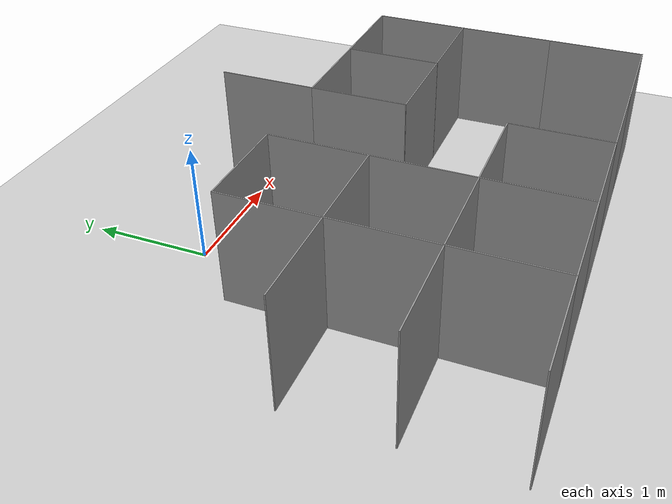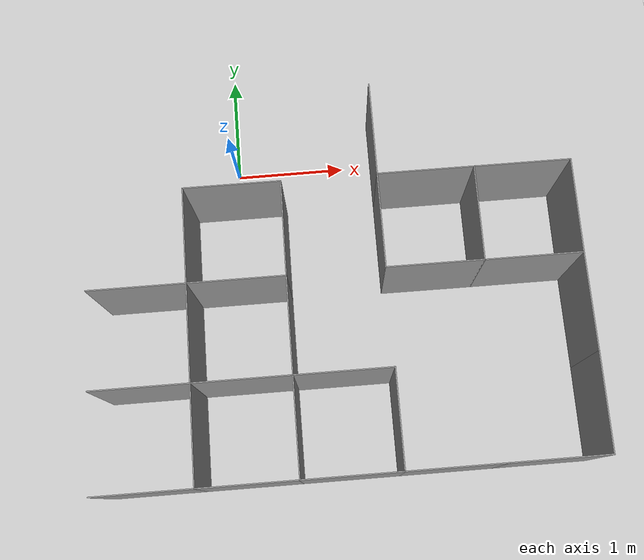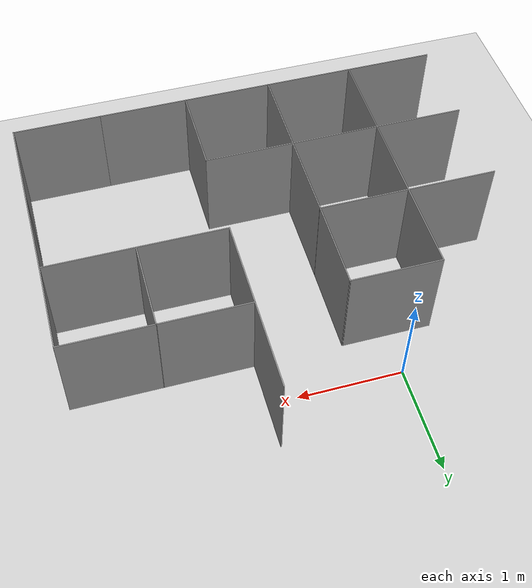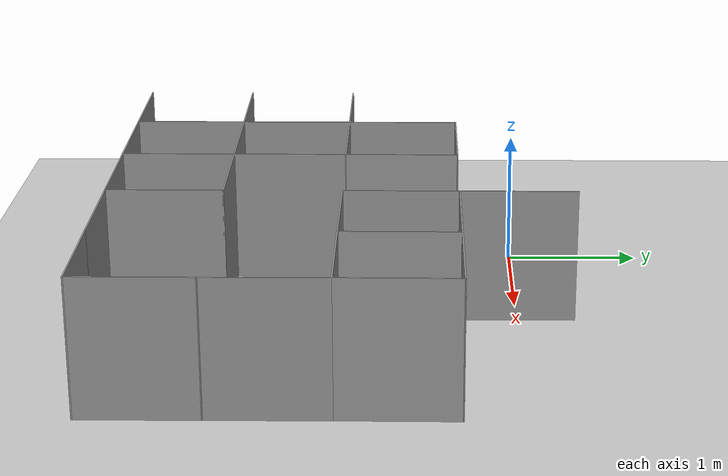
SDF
<sdf version="1.7">
 <world name="default">
  <include><uri>model://sun</uri></include>
  <include><uri>model://ground_plane</uri></include>
  <model name="Lab1">
   <link name="Wall_159">
    <pose>-0.846372 -2.97504 0 0 -0 0</pose>
    <visual name="Wall_159_Visual">
     <pose>0 0 0.5 0 -0 0</pose>
     <geometry><box><size>0.860147 0.01 1</size></box></geometry>
     <material>
      <script><uri>file://media/materials/scripts/gazebo.material</uri><name>Gazebo/Grey</name></script>
      <ambient>1 1 1 1</ambient>
      <shader type="pixel"/>
     </material>
     <meta><layer>0</layer></meta>
    </visual>
    <collision name="Wall_159_Collision">
     <pose>0 0 0.5 0 -0 0</pose>
     <geometry><box><size>0.860147 0.01 1</size></box></geometry>
     <surface>
      <friction>
       <ode><mu>1</mu><mu2>1</mu2><fdir1>0 0 0</fdir1><slip1>0</slip1><slip2>0</slip2></ode>
       <torsional>
        <coefficient>1</coefficient>
        <patch_radius>0</patch_radius>
        <surface_radius>0</surface_radius>
        <use_patch_radius>1</use_patch_radius>
        <ode><slip>0</slip></ode>
       </torsional>
      </friction>
      <bounce><restitution_coefficient>0</restitution_coefficient><threshold>1e+06</threshold></bounce>
      <contact>
       <collide_without_contact>0</collide_without_contact>
       <collide_without_contact_bitmask>1</collide_without_contact_bitmask>
       <collide_bitmask>1</collide_bitmask>
       <ode>
        <soft_cfm>0</soft_cfm>
        <soft_erp>0.2</soft_erp>
        <kp>1e+13</kp>
        <kd>1</kd>
        <max_vel>0.01</max_vel>
        <min_depth>0</min_depth>
       </ode>
       <bullet>
        <split_impulse>1</split_impulse>
        <split_impulse_penetration_threshold>-0.01</split_impulse_penetration_threshold>
        <soft_cfm>0</soft_cfm>
        <soft_erp>0.2</soft_erp>
        <kp>1e+13</kp>
        <kd>1</kd>
       </bullet>
      </contact>
     </surface>
    </collision>
   </link>
   <link name="Wall_160">
    <pose>0.003628 -2.97504 0 0 -0 0</pose>
    <visual name="Wall_160_Visual">
     <pose>0 0 0.5 0 -0 0</pose>
     <geometry><box><size>0.860147 0.01 1</size></box></geometry>
     <material>
      <script><uri>file://media/materials/scripts/gazebo.material</uri><name>Gazebo/Grey</name></script>
      <ambient>1 1 1 1</ambient>
      <shader type="pixel"/>
     </material>
     <meta><layer>0</layer></meta>
    </visual>
    <collision name="Wall_160_Collision">
     <pose>0 0 0.5 0 -0 0</pose>
     <geometry><box><size>0.860147 0.01 1</size></box></geometry>
     <surface>
      <friction>
       <ode><mu>1</mu><mu2>1</mu2><fdir1>0 0 0</fdir1><slip1>0</slip1><slip2>0</slip2></ode>
       <torsional>
        <coefficient>1</coefficient>
        <patch_radius>0</patch_radius>
        <surface_radius>0</surface_radius>
        <use_patch_radius>1</use_patch_radius>
        <ode><slip>0</slip></ode>
       </torsional>
      </friction>
      <bounce><restitution_coefficient>0</restitution_coefficient><threshold>1e+06</threshold></bounce>
      <contact>
       <collide_without_contact>0</collide_without_contact>
       <collide_without_contact_bitmask>1</collide_without_contact_bitmask>
       <collide_bitmask>1</collide_bitmask>
       <ode>
        <soft_cfm>0</soft_cfm>
        <soft_erp>0.2</soft_erp>
        <kp>1e+13</kp>
        <kd>1</kd>
        <max_vel>0.01</max_vel>
        <min_depth>0</min_depth>
       </ode>
       <bullet>
        <split_impulse>1</split_impulse>
        <split_impulse_penetration_threshold>-0.01</split_impulse_penetration_threshold>
        <soft_cfm>0</soft_cfm>
        <soft_erp>0.2</soft_erp>
        <kp>1e+13</kp>
        <kd>1</kd>
       </bullet>
      </contact>
     </surface>
    </collision>
   </link>
   <link name="Wall_161">
    <pose>0.853628 -2.97504 0 0 -0 0</pose>
    <visual name="Wall_161_Visual">
     <pose>0 0 0.5 0 -0 0</pose>
     <geometry><box><size>0.860147 0.01 1</size></box></geometry>
     <material>
      <script><uri>file://media/materials/scripts/gazebo.material</uri><name>Gazebo/Grey</name></script>
      <ambient>1 1 1 1</ambient>
      <shader type="pixel"/>
     </material>
     <meta><layer>0</layer></meta>
    </visual>
    <collision name="Wall_161_Collision">
     <pose>0 0 0.5 0 -0 0</pose>
     <geometry><box><size>0.860147 0.01 1</size></box></geometry>
     <surface>
      <friction>
       <ode><mu>1</mu><mu2>1</mu2><fdir1>0 0 0</fdir1><slip1>0</slip1><slip2>0</slip2></ode>
       <torsional>
        <coefficient>1</coefficient>
        <patch_radius>0</patch_radius>
        <surface_radius>0</surface_radius>
        <use_patch_radius>1</use_patch_radius>
        <ode><slip>0</slip></ode>
       </torsional>
      </friction>
      <bounce><restitution_coefficient>0</restitution_coefficient><threshold>1e+06</threshold></bounce>
      <contact>
       <collide_without_contact>0</collide_without_contact>
       <collide_without_contact_bitmask>1</collide_without_contact_bitmask>
       <collide_bitmask>1</collide_bitmask>
       <ode>
        <soft_cfm>0</soft_cfm>
        <soft_erp>0.2</soft_erp>
        <kp>1e+13</kp>
        <kd>1</kd>
        <max_vel>0.01</max_vel>
        <min_depth>0</min_depth>
       </ode>
       <bullet>
        <split_impulse>1</split_impulse>
        <split_impulse_penetration_threshold>-0.01</split_impulse_penetration_threshold>
        <soft_cfm>0</soft_cfm>
        <soft_erp>0.2</soft_erp>
        <kp>1e+13</kp>
        <kd>1</kd>
       </bullet>
      </contact>
     </surface>
    </collision>
   </link>
   <link name="Wall_162">
    <pose>1.70363 -2.97504 0 0 -0 0</pose>
    <visual name="Wall_162_Visual">
     <pose>0 0 0.5 0 -0 0</pose>
     <geometry><box><size>0.860147 0.01 1</size></box></geometry>
     <material>
      <script><uri>file://media/materials/scripts/gazebo.material</uri><name>Gazebo/Grey</name></script>
      <ambient>1 1 1 1</ambient>
      <shader type="pixel"/>
     </material>
     <meta><layer>0</layer></meta>
    </visual>
    <collision name="Wall_162_Collision">
     <pose>0 0 0.5 0 -0 0</pose>
     <geometry><box><size>0.860147 0.01 1</size></box></geometry>
     <surface>
      <friction>
       <ode><mu>1</mu><mu2>1</mu2><fdir1>0 0 0</fdir1><slip1>0</slip1><slip2>0</slip2></ode>
       <torsional>
        <coefficient>1</coefficient>
        <patch_radius>0</patch_radius>
        <surface_radius>0</surface_radius>
        <use_patch_radius>1</use_patch_radius>
        <ode><slip>0</slip></ode>
       </torsional>
      </friction>
      <bounce><restitution_coefficient>0</restitution_coefficient><threshold>1e+06</threshold></bounce>
      <contact>
       <collide_without_contact>0</collide_without_contact>
       <collide_without_contact_bitmask>1</collide_without_contact_bitmask>
       <collide_bitmask>1</collide_bitmask>
       <ode>
        <soft_cfm>0</soft_cfm>
        <soft_erp>0.2</soft_erp>
        <kp>1e+13</kp>
        <kd>1</kd>
        <max_vel>0.01</max_vel>
        <min_depth>0</min_depth>
       </ode>
       <bullet>
        <split_impulse>1</split_impulse>
        <split_impulse_penetration_threshold>-0.01</split_impulse_penetration_threshold>
        <soft_cfm>0</soft_cfm>
        <soft_erp>0.2</soft_erp>
        <kp>1e+13</kp>
        <kd>1</kd>
       </bullet>
      </contact>
     </surface>
    </collision>
   </link>
   <link name="Wall_163">
    <pose>2.55363 -2.97504 0 0 -0 0</pose>
    <visual name="Wall_163_Visual">
     <pose>0 0 0.5 0 -0 0</pose>
     <geometry><box><size>0.860147 0.01 1</size></box></geometry>
     <material>
      <script><uri>file://media/materials/scripts/gazebo.material</uri><name>Gazebo/Grey</name></script>
      <ambient>1 1 1 1</ambient>
      <shader type="pixel"/>
     </material>
     <meta><layer>0</layer></meta>
    </visual>
    <collision name="Wall_163_Collision">
     <pose>0 0 0.5 0 -0 0</pose>
     <geometry><box><size>0.860147 0.01 1</size></box></geometry>
     <surface>
      <friction>
       <ode><mu>1</mu><mu2>1</mu2><fdir1>0 0 0</fdir1><slip1>0</slip1><slip2>0</slip2></ode>
       <torsional>
        <coefficient>1</coefficient>
        <patch_radius>0</patch_radius>
        <surface_radius>0</surface_radius>
        <use_patch_radius>1</use_patch_radius>
        <ode><slip>0</slip></ode>
       </torsional>
      </friction>
      <bounce><restitution_coefficient>0</restitution_coefficient><threshold>1e+06</threshold></bounce>
      <contact>
       <collide_without_contact>0</collide_without_contact>
       <collide_without_contact_bitmask>1</collide_without_contact_bitmask>
       <collide_bitmask>1</collide_bitmask>
       <ode>
        <soft_cfm>0</soft_cfm>
        <soft_erp>0.2</soft_erp>
        <kp>1e+13</kp>
        <kd>1</kd>
        <max_vel>0.01</max_vel>
        <min_depth>0</min_depth>
       </ode>
       <bullet>
        <split_impulse>1</split_impulse>
        <split_impulse_penetration_threshold>-0.01</split_impulse_penetration_threshold>
        <soft_cfm>0</soft_cfm>
        <soft_erp>0.2</soft_erp>
        <kp>1e+13</kp>
        <kd>1</kd>
       </bullet>
      </contact>
     </surface>
    </collision>
   </link>
   <link name="Wall_164">
    <pose>2.97863 -2.55003 0 0 -0 1.5708</pose>
    <visual name="Wall_164_Visual">
     <pose>0 0 0.5 0 -0 0</pose>
     <geometry><box><size>0.859555 0.01 1</size></box></geometry>
     <material>
      <script><uri>file://media/materials/scripts/gazebo.material</uri><name>Gazebo/Grey</name></script>
      <ambient>1 1 1 1</ambient>
      <shader type="pixel"/>
     </material>
     <meta><layer>0</layer></meta>
    </visual>
    <collision name="Wall_164_Collision">
     <pose>0 0 0.5 0 -0 0</pose>
     <geometry><box><size>0.859555 0.01 1</size></box></geometry>
     <surface>
      <friction>
       <ode><mu>1</mu><mu2>1</mu2><fdir1>0 0 0</fdir1><slip1>0</slip1><slip2>0</slip2></ode>
       <torsional>
        <coefficient>1</coefficient>
        <patch_radius>0</patch_radius>
        <surface_radius>0</surface_radius>
        <use_patch_radius>1</use_patch_radius>
        <ode><slip>0</slip></ode>
       </torsional>
      </friction>
      <bounce><restitution_coefficient>0</restitution_coefficient><threshold>1e+06</threshold></bounce>
      <contact>
       <collide_without_contact>0</collide_without_contact>
       <collide_without_contact_bitmask>1</collide_without_contact_bitmask>
       <collide_bitmask>1</collide_bitmask>
       <ode>
        <soft_cfm>0</soft_cfm>
        <soft_erp>0.2</soft_erp>
        <kp>1e+13</kp>
        <kd>1</kd>
        <max_vel>0.01</max_vel>
        <min_depth>0</min_depth>
       </ode>
       <bullet>
        <split_impulse>1</split_impulse>
        <split_impulse_penetration_threshold>-0.01</split_impulse_penetration_threshold>
        <soft_cfm>0</soft_cfm>
        <soft_erp>0.2</soft_erp>
        <kp>1e+13</kp>
        <kd>1</kd>
       </bullet>
      </contact>
     </surface>
    </collision>
   </link>
   <link name="Wall_165">
    <pose>2.97663 -1.69803 0 0 -0 1.57548</pose>
    <visual name="Wall_165_Visual">
     <pose>0 0 0.5 0 -0 0</pose>
     <geometry><box><size>0.864282 0.01 1</size></box></geometry>
     <material>
      <script><uri>file://media/materials/scripts/gazebo.material</uri><name>Gazebo/Grey</name></script>
      <ambient>1 1 1 1</ambient>
      <shader type="pixel"/>
     </material>
     <meta><layer>0</layer></meta>
    </visual>
    <collision name="Wall_165_Collision">
     <pose>0 0 0.5 0 -0 0</pose>
     <geometry><box><size>0.864282 0.01 1</size></box></geometry>
     <surface>
      <friction>
       <ode><mu>1</mu><mu2>1</mu2><fdir1>0 0 0</fdir1><slip1>0</slip1><slip2>0</slip2></ode>
       <torsional>
        <coefficient>1</coefficient>
        <patch_radius>0</patch_radius>
        <surface_radius>0</surface_radius>
        <use_patch_radius>1</use_patch_radius>
        <ode><slip>0</slip></ode>
       </torsional>
      </friction>
      <bounce><restitution_coefficient>0</restitution_coefficient><threshold>1e+06</threshold></bounce>
      <contact>
       <collide_without_contact>0</collide_without_contact>
       <collide_without_contact_bitmask>1</collide_without_contact_bitmask>
       <collide_bitmask>1</collide_bitmask>
       <ode>
        <soft_cfm>0</soft_cfm>
        <soft_erp>0.2</soft_erp>
        <kp>1e+13</kp>
        <kd>1</kd>
        <max_vel>0.01</max_vel>
        <min_depth>0</min_depth>
       </ode>
       <bullet>
        <split_impulse>1</split_impulse>
        <split_impulse_penetration_threshold>-0.01</split_impulse_penetration_threshold>
        <soft_cfm>0</soft_cfm>
        <soft_erp>0.2</soft_erp>
        <kp>1e+13</kp>
        <kd>1</kd>
       </bullet>
      </contact>
     </surface>
    </collision>
   </link>
   <link name="Wall_166">
    <pose>2.97663 -0.848035 0 0 -0 1.56607</pose>
    <visual name="Wall_166_Visual">
     <pose>0 0 0.5 0 -0 0</pose>
     <geometry><box><size>0.855565 0.01 1</size></box></geometry>
     <material>
      <script><uri>file://media/materials/scripts/gazebo.material</uri><name>Gazebo/Grey</name></script>
      <ambient>1 1 1 1</ambient>
      <shader type="pixel"/>
     </material>
     <meta><layer>0</layer></meta>
    </visual>
    <collision name="Wall_166_Collision">
     <pose>0 0 0.5 0 -0 0</pose>
     <geometry><box><size>0.855565 0.01 1</size></box></geometry>
     <surface>
      <friction>
       <ode><mu>1</mu><mu2>1</mu2><fdir1>0 0 0</fdir1><slip1>0</slip1><slip2>0</slip2></ode>
       <torsional>
        <coefficient>1</coefficient>
        <patch_radius>0</patch_radius>
        <surface_radius>0</surface_radius>
        <use_patch_radius>1</use_patch_radius>
        <ode><slip>0</slip></ode>
       </torsional>
      </friction>
      <bounce><restitution_coefficient>0</restitution_coefficient><threshold>1e+06</threshold></bounce>
      <contact>
       <collide_without_contact>0</collide_without_contact>
       <collide_without_contact_bitmask>1</collide_without_contact_bitmask>
       <collide_bitmask>1</collide_bitmask>
       <ode>
        <soft_cfm>0</soft_cfm>
        <soft_erp>0.2</soft_erp>
        <kp>1e+13</kp>
        <kd>1</kd>
        <max_vel>0.01</max_vel>
        <min_depth>0</min_depth>
       </ode>
       <bullet>
        <split_impulse>1</split_impulse>
        <split_impulse_penetration_threshold>-0.01</split_impulse_penetration_threshold>
        <soft_cfm>0</soft_cfm>
        <soft_erp>0.2</soft_erp>
        <kp>1e+13</kp>
        <kd>1</kd>
       </bullet>
      </contact>
     </surface>
    </collision>
   </link>
   <link name="Wall_49">
    <pose>-0.421372 -2.55003 0 0 -0 1.5708</pose>
    <visual name="Wall_49_Visual">
     <pose>0 0 0.5 0 -0 0</pose>
     <geometry><box><size>0.859555 0.01 1</size></box></geometry>
     <material>
      <script><uri>file://media/materials/scripts/gazebo.material</uri><name>Gazebo/Grey</name></script>
      <ambient>1 1 1 1</ambient>
      <shader type="pixel"/>
     </material>
     <meta><layer>0</layer></meta>
    </visual>
    <collision name="Wall_49_Collision">
     <pose>0 0 0.5 0 -0 0</pose>
     <geometry><box><size>0.859555 0.01 1</size></box></geometry>
     <surface>
      <friction>
       <ode><mu>1</mu><mu2>1</mu2><fdir1>0 0 0</fdir1><slip1>0</slip1><slip2>0</slip2></ode>
       <torsional>
        <coefficient>1</coefficient>
        <patch_radius>0</patch_radius>
        <surface_radius>0</surface_radius>
        <use_patch_radius>1</use_patch_radius>
        <ode><slip>0</slip></ode>
       </torsional>
      </friction>
      <bounce><restitution_coefficient>0</restitution_coefficient><threshold>1e+06</threshold></bounce>
      <contact>
       <collide_without_contact>0</collide_without_contact>
       <collide_without_contact_bitmask>1</collide_without_contact_bitmask>
       <collide_bitmask>1</collide_bitmask>
       <ode>
        <soft_cfm>0</soft_cfm>
        <soft_erp>0.2</soft_erp>
        <kp>1e+13</kp>
        <kd>1</kd>
        <max_vel>0.01</max_vel>
        <min_depth>0</min_depth>
       </ode>
       <bullet>
        <split_impulse>1</split_impulse>
        <split_impulse_penetration_threshold>-0.01</split_impulse_penetration_threshold>
        <soft_cfm>0</soft_cfm>
        <soft_erp>0.2</soft_erp>
        <kp>1e+13</kp>
        <kd>1</kd>
       </bullet>
      </contact>
     </surface>
    </collision>
   </link>
   <link name="Wall_50">
    <pose>0.003628 -2.12504 0 0 -0 0</pose>
    <visual name="Wall_50_Visual">
     <pose>0 0 0.5 0 -0 0</pose>
     <geometry><box><size>0.86 0.01 1</size></box></geometry>
     <material>
      <script><uri>file://media/materials/scripts/gazebo.material</uri><name>Gazebo/Grey</name></script>
      <ambient>1 1 1 1</ambient>
      <shader type="pixel"/>
     </material>
     <meta><layer>0</layer></meta>
    </visual>
    <collision name="Wall_50_Collision">
     <pose>0 0 0.5 0 -0 0</pose>
     <geometry><box><size>0.86 0.01 1</size></box></geometry>
     <surface>
      <friction>
       <ode><mu>1</mu><mu2>1</mu2><fdir1>0 0 0</fdir1><slip1>0</slip1><slip2>0</slip2></ode>
       <torsional>
        <coefficient>1</coefficient>
        <patch_radius>0</patch_radius>
        <surface_radius>0</surface_radius>
        <use_patch_radius>1</use_patch_radius>
        <ode><slip>0</slip></ode>
       </torsional>
      </friction>
      <bounce><restitution_coefficient>0</restitution_coefficient><threshold>1e+06</threshold></bounce>
      <contact>
       <collide_without_contact>0</collide_without_contact>
       <collide_without_contact_bitmask>1</collide_without_contact_bitmask>
       <collide_bitmask>1</collide_bitmask>
       <ode>
        <soft_cfm>0</soft_cfm>
        <soft_erp>0.2</soft_erp>
        <kp>1e+13</kp>
        <kd>1</kd>
        <max_vel>0.01</max_vel>
        <min_depth>0</min_depth>
       </ode>
       <bullet>
        <split_impulse>1</split_impulse>
        <split_impulse_penetration_threshold>-0.01</split_impulse_penetration_threshold>
        <soft_cfm>0</soft_cfm>
        <soft_erp>0.2</soft_erp>
        <kp>1e+13</kp>
        <kd>1</kd>
       </bullet>
      </contact>
     </surface>
    </collision>
   </link>
   <link name="Wall_51">
    <pose>0.428628 -2.55003 0 0 0 -1.5708</pose>
    <visual name="Wall_51_Visual">
     <pose>0 0 0.5 0 -0 0</pose>
     <geometry><box><size>0.86 0.01 1</size></box></geometry>
     <material>
      <script><uri>file://media/materials/scripts/gazebo.material</uri><name>Gazebo/Grey</name></script>
      <ambient>1 1 1 1</ambient>
      <shader type="pixel"/>
     </material>
     <meta><layer>0</layer></meta>
    </visual>
    <collision name="Wall_51_Collision">
     <pose>0 0 0.5 0 -0 0</pose>
     <geometry><box><size>0.86 0.01 1</size></box></geometry>
     <surface>
      <friction>
       <ode><mu>1</mu><mu2>1</mu2><fdir1>0 0 0</fdir1><slip1>0</slip1><slip2>0</slip2></ode>
       <torsional>
        <coefficient>1</coefficient>
        <patch_radius>0</patch_radius>
        <surface_radius>0</surface_radius>
        <use_patch_radius>1</use_patch_radius>
        <ode><slip>0</slip></ode>
       </torsional>
      </friction>
      <bounce><restitution_coefficient>0</restitution_coefficient><threshold>1e+06</threshold></bounce>
      <contact>
       <collide_without_contact>0</collide_without_contact>
       <collide_without_contact_bitmask>1</collide_without_contact_bitmask>
       <collide_bitmask>1</collide_bitmask>
       <ode>
        <soft_cfm>0</soft_cfm>
        <soft_erp>0.2</soft_erp>
        <kp>1e+13</kp>
        <kd>1</kd>
        <max_vel>0.01</max_vel>
        <min_depth>0</min_depth>
       </ode>
       <bullet>
        <split_impulse>1</split_impulse>
        <split_impulse_penetration_threshold>-0.01</split_impulse_penetration_threshold>
        <soft_cfm>0</soft_cfm>
        <soft_erp>0.2</soft_erp>
        <kp>1e+13</kp>
        <kd>1</kd>
       </bullet>
      </contact>
     </surface>
    </collision>
   </link>
   <link name="Wall_53">
    <pose>1.27863 -2.55003 0 0 -0 1.5708</pose>
    <visual name="Wall_53_Visual">
     <pose>0 0 0.5 0 -0 0</pose>
     <geometry><box><size>0.859555 0.01 1</size></box></geometry>
     <material>
      <script><uri>file://media/materials/scripts/gazebo.material</uri><name>Gazebo/Grey</name></script>
      <ambient>1 1 1 1</ambient>
      <shader type="pixel"/>
     </material>
     <meta><layer>0</layer></meta>
    </visual>
    <collision name="Wall_53_Collision">
     <pose>0 0 0.5 0 -0 0</pose>
     <geometry><box><size>0.859555 0.01 1</size></box></geometry>
     <surface>
      <friction>
       <ode><mu>1</mu><mu2>1</mu2><fdir1>0 0 0</fdir1><slip1>0</slip1><slip2>0</slip2></ode>
       <torsional>
        <coefficient>1</coefficient>
        <patch_radius>0</patch_radius>
        <surface_radius>0</surface_radius>
        <use_patch_radius>1</use_patch_radius>
        <ode><slip>0</slip></ode>
       </torsional>
      </friction>
      <bounce><restitution_coefficient>0</restitution_coefficient><threshold>1e+06</threshold></bounce>
      <contact>
       <collide_without_contact>0</collide_without_contact>
       <collide_without_contact_bitmask>1</collide_without_contact_bitmask>
       <collide_bitmask>1</collide_bitmask>
       <ode>
        <soft_cfm>0</soft_cfm>
        <soft_erp>0.2</soft_erp>
        <kp>1e+13</kp>
        <kd>1</kd>
        <max_vel>0.01</max_vel>
        <min_depth>0</min_depth>
       </ode>
       <bullet>
        <split_impulse>1</split_impulse>
        <split_impulse_penetration_threshold>-0.01</split_impulse_penetration_threshold>
        <soft_cfm>0</soft_cfm>
        <soft_erp>0.2</soft_erp>
        <kp>1e+13</kp>
        <kd>1</kd>
       </bullet>
      </contact>
     </surface>
    </collision>
   </link>
   <link name="Wall_60">
    <pose>1.70163 -1.27004 0 0 -0 3.13923</pose>
    <visual name="Wall_60_Visual">
     <pose>0 0 0.5 0 -0 0</pose>
     <geometry><box><size>0.856002 0.01 1</size></box></geometry>
     <material>
      <script><uri>file://media/materials/scripts/gazebo.material</uri><name>Gazebo/Grey</name></script>
      <ambient>1 1 1 1</ambient>
      <shader type="pixel"/>
     </material>
     <meta><layer>0</layer></meta>
    </visual>
    <collision name="Wall_60_Collision">
     <pose>0 0 0.5 0 -0 0</pose>
     <geometry><box><size>0.856002 0.01 1</size></box></geometry>
     <surface>
      <friction>
       <ode><mu>1</mu><mu2>1</mu2><fdir1>0 0 0</fdir1><slip1>0</slip1><slip2>0</slip2></ode>
       <torsional>
        <coefficient>1</coefficient>
        <patch_radius>0</patch_radius>
        <surface_radius>0</surface_radius>
        <use_patch_radius>1</use_patch_radius>
        <ode><slip>0</slip></ode>
       </torsional>
      </friction>
      <bounce><restitution_coefficient>0</restitution_coefficient><threshold>1e+06</threshold></bounce>
      <contact>
       <collide_without_contact>0</collide_without_contact>
       <collide_without_contact_bitmask>1</collide_without_contact_bitmask>
       <collide_bitmask>1</collide_bitmask>
       <ode>
        <soft_cfm>0</soft_cfm>
        <soft_erp>0.2</soft_erp>
        <kp>1e+13</kp>
        <kd>1</kd>
        <max_vel>0.01</max_vel>
        <min_depth>0</min_depth>
       </ode>
       <bullet>
        <split_impulse>1</split_impulse>
        <split_impulse_penetration_threshold>-0.01</split_impulse_penetration_threshold>
        <soft_cfm>0</soft_cfm>
        <soft_erp>0.2</soft_erp>
        <kp>1e+13</kp>
        <kd>1</kd>
       </bullet>
      </contact>
     </surface>
    </collision>
   </link>
   <link name="Wall_62">
    <pose>0.853628 -2.12504 0 0 -0 3.14159</pose>
    <visual name="Wall_62_Visual">
     <pose>0 0 0.5 0 -0 0</pose>
     <geometry><box><size>0.86 0.01 1</size></box></geometry>
     <material>
      <script><uri>file://media/materials/scripts/gazebo.material</uri><name>Gazebo/Grey</name></script>
      <ambient>1 1 1 1</ambient>
      <shader type="pixel"/>
     </material>
     <meta><layer>0</layer></meta>
    </visual>
    <collision name="Wall_62_Collision">
     <pose>0 0 0.5 0 -0 0</pose>
     <geometry><box><size>0.86 0.01 1</size></box></geometry>
     <surface>
      <friction>
       <ode><mu>1</mu><mu2>1</mu2><fdir1>0 0 0</fdir1><slip1>0</slip1><slip2>0</slip2></ode>
       <torsional>
        <coefficient>1</coefficient>
        <patch_radius>0</patch_radius>
        <surface_radius>0</surface_radius>
        <use_patch_radius>1</use_patch_radius>
        <ode><slip>0</slip></ode>
       </torsional>
      </friction>
      <bounce><restitution_coefficient>0</restitution_coefficient><threshold>1e+06</threshold></bounce>
      <contact>
       <collide_without_contact>0</collide_without_contact>
       <collide_without_contact_bitmask>1</collide_without_contact_bitmask>
       <collide_bitmask>1</collide_bitmask>
       <ode>
        <soft_cfm>0</soft_cfm>
        <soft_erp>0.2</soft_erp>
        <kp>1e+13</kp>
        <kd>1</kd>
        <max_vel>0.01</max_vel>
        <min_depth>0</min_depth>
       </ode>
       <bullet>
        <split_impulse>1</split_impulse>
        <split_impulse_penetration_threshold>-0.01</split_impulse_penetration_threshold>
        <soft_cfm>0</soft_cfm>
        <soft_erp>0.2</soft_erp>
        <kp>1e+13</kp>
        <kd>1</kd>
       </bullet>
      </contact>
     </surface>
    </collision>
   </link>
   <link name="Wall_63">
    <pose>0.428628 -1.70003 0 0 -0 1.5708</pose>
    <visual name="Wall_63_Visual">
     <pose>0 0 0.5 0 -0 0</pose>
     <geometry><box><size>0.859555 0.01 1</size></box></geometry>
     <material>
      <script><uri>file://media/materials/scripts/gazebo.material</uri><name>Gazebo/Grey</name></script>
      <ambient>1 1 1 1</ambient>
      <shader type="pixel"/>
     </material>
     <meta><layer>0</layer></meta>
    </visual>
    <collision name="Wall_63_Collision">
     <pose>0 0 0.5 0 -0 0</pose>
     <geometry><box><size>0.859555 0.01 1</size></box></geometry>
     <surface>
      <friction>
       <ode><mu>1</mu><mu2>1</mu2><fdir1>0 0 0</fdir1><slip1>0</slip1><slip2>0</slip2></ode>
       <torsional>
        <coefficient>1</coefficient>
        <patch_radius>0</patch_radius>
        <surface_radius>0</surface_radius>
        <use_patch_radius>1</use_patch_radius>
        <ode><slip>0</slip></ode>
       </torsional>
      </friction>
      <bounce><restitution_coefficient>0</restitution_coefficient><threshold>1e+06</threshold></bounce>
      <contact>
       <collide_without_contact>0</collide_without_contact>
       <collide_without_contact_bitmask>1</collide_without_contact_bitmask>
       <collide_bitmask>1</collide_bitmask>
       <ode>
        <soft_cfm>0</soft_cfm>
        <soft_erp>0.2</soft_erp>
        <kp>1e+13</kp>
        <kd>1</kd>
        <max_vel>0.01</max_vel>
        <min_depth>0</min_depth>
       </ode>
       <bullet>
        <split_impulse>1</split_impulse>
        <split_impulse_penetration_threshold>-0.01</split_impulse_penetration_threshold>
        <soft_cfm>0</soft_cfm>
        <soft_erp>0.2</soft_erp>
        <kp>1e+13</kp>
        <kd>1</kd>
       </bullet>
      </contact>
     </surface>
    </collision>
   </link>
   <link name="Wall_64">
    <pose>0.003628 -1.27503 0 0 -0 3.14159</pose>
    <visual name="Wall_64_Visual">
     <pose>0 0 0.5 0 -0 0</pose>
     <geometry><box><size>0.86 0.01 1</size></box></geometry>
     <material>
      <script><uri>file://media/materials/scripts/gazebo.material</uri><name>Gazebo/Grey</name></script>
      <ambient>1 1 1 1</ambient>
      <shader type="pixel"/>
     </material>
     <meta><layer>0</layer></meta>
    </visual>
    <collision name="Wall_64_Collision">
     <pose>0 0 0.5 0 -0 0</pose>
     <geometry><box><size>0.86 0.01 1</size></box></geometry>
     <surface>
      <friction>
       <ode><mu>1</mu><mu2>1</mu2><fdir1>0 0 0</fdir1><slip1>0</slip1><slip2>0</slip2></ode>
       <torsional>
        <coefficient>1</coefficient>
        <patch_radius>0</patch_radius>
        <surface_radius>0</surface_radius>
        <use_patch_radius>1</use_patch_radius>
        <ode><slip>0</slip></ode>
       </torsional>
      </friction>
      <bounce><restitution_coefficient>0</restitution_coefficient><threshold>1e+06</threshold></bounce>
      <contact>
       <collide_without_contact>0</collide_without_contact>
       <collide_without_contact_bitmask>1</collide_without_contact_bitmask>
       <collide_bitmask>1</collide_bitmask>
       <ode>
        <soft_cfm>0</soft_cfm>
        <soft_erp>0.2</soft_erp>
        <kp>1e+13</kp>
        <kd>1</kd>
        <max_vel>0.01</max_vel>
        <min_depth>0</min_depth>
       </ode>
       <bullet>
        <split_impulse>1</split_impulse>
        <split_impulse_penetration_threshold>-0.01</split_impulse_penetration_threshold>
        <soft_cfm>0</soft_cfm>
        <soft_erp>0.2</soft_erp>
        <kp>1e+13</kp>
        <kd>1</kd>
       </bullet>
      </contact>
     </surface>
    </collision>
   </link>
   <link name="Wall_65">
    <pose>-0.421372 -1.70003 0 0 0 -1.5708</pose>
    <visual name="Wall_65_Visual">
     <pose>0 0 0.5 0 -0 0</pose>
     <geometry><box><size>0.86 0.01 1</size></box></geometry>
     <material>
      <script><uri>file://media/materials/scripts/gazebo.material</uri><name>Gazebo/Grey</name></script>
      <ambient>1 1 1 1</ambient>
      <shader type="pixel"/>
     </material>
     <meta><layer>0</layer></meta>
    </visual>
    <collision name="Wall_65_Collision">
     <pose>0 0 0.5 0 -0 0</pose>
     <geometry><box><size>0.86 0.01 1</size></box></geometry>
     <surface>
      <friction>
       <ode><mu>1</mu><mu2>1</mu2><fdir1>0 0 0</fdir1><slip1>0</slip1><slip2>0</slip2></ode>
       <torsional>
        <coefficient>1</coefficient>
        <patch_radius>0</patch_radius>
        <surface_radius>0</surface_radius>
        <use_patch_radius>1</use_patch_radius>
        <ode><slip>0</slip></ode>
       </torsional>
      </friction>
      <bounce><restitution_coefficient>0</restitution_coefficient><threshold>1e+06</threshold></bounce>
      <contact>
       <collide_without_contact>0</collide_without_contact>
       <collide_without_contact_bitmask>1</collide_without_contact_bitmask>
       <collide_bitmask>1</collide_bitmask>
       <ode>
        <soft_cfm>0</soft_cfm>
        <soft_erp>0.2</soft_erp>
        <kp>1e+13</kp>
        <kd>1</kd>
        <max_vel>0.01</max_vel>
        <min_depth>0</min_depth>
       </ode>
       <bullet>
        <split_impulse>1</split_impulse>
        <split_impulse_penetration_threshold>-0.01</split_impulse_penetration_threshold>
        <soft_cfm>0</soft_cfm>
        <soft_erp>0.2</soft_erp>
        <kp>1e+13</kp>
        <kd>1</kd>
       </bullet>
      </contact>
     </surface>
    </collision>
   </link>
   <link name="Wall_66">
    <pose>-0.846372 -2.12504 0 0 -0 3.14159</pose>
    <visual name="Wall_66_Visual">
     <pose>0 0 0.5 0 -0 0</pose>
     <geometry><box><size>0.86 0.01 1</size></box></geometry>
     <material>
      <script><uri>file://media/materials/scripts/gazebo.material</uri><name>Gazebo/Grey</name></script>
      <ambient>1 1 1 1</ambient>
      <shader type="pixel"/>
     </material>
     <meta><layer>0</layer></meta>
    </visual>
    <collision name="Wall_66_Collision">
     <pose>0 0 0.5 0 -0 0</pose>
     <geometry><box><size>0.86 0.01 1</size></box></geometry>
     <surface>
      <friction>
       <ode><mu>1</mu><mu2>1</mu2><fdir1>0 0 0</fdir1><slip1>0</slip1><slip2>0</slip2></ode>
       <torsional>
        <coefficient>1</coefficient>
        <patch_radius>0</patch_radius>
        <surface_radius>0</surface_radius>
        <use_patch_radius>1</use_patch_radius>
        <ode><slip>0</slip></ode>
       </torsional>
      </friction>
      <bounce><restitution_coefficient>0</restitution_coefficient><threshold>1e+06</threshold></bounce>
      <contact>
       <collide_without_contact>0</collide_without_contact>
       <collide_without_contact_bitmask>1</collide_without_contact_bitmask>
       <collide_bitmask>1</collide_bitmask>
       <ode>
        <soft_cfm>0</soft_cfm>
        <soft_erp>0.2</soft_erp>
        <kp>1e+13</kp>
        <kd>1</kd>
        <max_vel>0.01</max_vel>
        <min_depth>0</min_depth>
       </ode>
       <bullet>
        <split_impulse>1</split_impulse>
        <split_impulse_penetration_threshold>-0.01</split_impulse_penetration_threshold>
        <soft_cfm>0</soft_cfm>
        <soft_erp>0.2</soft_erp>
        <kp>1e+13</kp>
        <kd>1</kd>
       </bullet>
      </contact>
     </surface>
    </collision>
   </link>
   <link name="Wall_76">
    <pose>-0.846372 -1.27503 0 0 -0 0</pose>
    <visual name="Wall_76_Visual">
     <pose>0 0 0.5 0 -0 0</pose>
     <geometry><box><size>0.86 0.01 1</size></box></geometry>
     <material>
      <script><uri>file://media/materials/scripts/gazebo.material</uri><name>Gazebo/Grey</name></script>
      <ambient>1 1 1 1</ambient>
      <shader type="pixel"/>
     </material>
     <meta><layer>0</layer></meta>
    </visual>
    <collision name="Wall_76_Collision">
     <pose>0 0 0.5 0 -0 0</pose>
     <geometry><box><size>0.86 0.01 1</size></box></geometry>
     <surface>
      <friction>
       <ode><mu>1</mu><mu2>1</mu2><fdir1>0 0 0</fdir1><slip1>0</slip1><slip2>0</slip2></ode>
       <torsional>
        <coefficient>1</coefficient>
        <patch_radius>0</patch_radius>
        <surface_radius>0</surface_radius>
        <use_patch_radius>1</use_patch_radius>
        <ode><slip>0</slip></ode>
       </torsional>
      </friction>
      <bounce><restitution_coefficient>0</restitution_coefficient><threshold>1e+06</threshold></bounce>
      <contact>
       <collide_without_contact>0</collide_without_contact>
       <collide_without_contact_bitmask>1</collide_without_contact_bitmask>
       <collide_bitmask>1</collide_bitmask>
       <ode>
        <soft_cfm>0</soft_cfm>
        <soft_erp>0.2</soft_erp>
        <kp>1e+13</kp>
        <kd>1</kd>
        <max_vel>0.01</max_vel>
        <min_depth>0</min_depth>
       </ode>
       <bullet>
        <split_impulse>1</split_impulse>
        <split_impulse_penetration_threshold>-0.01</split_impulse_penetration_threshold>
        <soft_cfm>0</soft_cfm>
        <soft_erp>0.2</soft_erp>
        <kp>1e+13</kp>
        <kd>1</kd>
       </bullet>
      </contact>
     </surface>
    </collision>
   </link>
   <link name="Wall_77">
    <pose>-0.421372 -0.850035 0 0 -0 1.5708</pose>
    <visual name="Wall_77_Visual">
     <pose>0 0 0.5 0 -0 0</pose>
     <geometry><box><size>0.859555 0.01 1</size></box></geometry>
     <material>
      <script><uri>file://media/materials/scripts/gazebo.material</uri><name>Gazebo/Grey</name></script>
      <ambient>1 1 1 1</ambient>
      <shader type="pixel"/>
     </material>
     <meta><layer>0</layer></meta>
    </visual>
    <collision name="Wall_77_Collision">
     <pose>0 0 0.5 0 -0 0</pose>
     <geometry><box><size>0.859555 0.01 1</size></box></geometry>
     <surface>
      <friction>
       <ode><mu>1</mu><mu2>1</mu2><fdir1>0 0 0</fdir1><slip1>0</slip1><slip2>0</slip2></ode>
       <torsional>
        <coefficient>1</coefficient>
        <patch_radius>0</patch_radius>
        <surface_radius>0</surface_radius>
        <use_patch_radius>1</use_patch_radius>
        <ode><slip>0</slip></ode>
       </torsional>
      </friction>
      <bounce><restitution_coefficient>0</restitution_coefficient><threshold>1e+06</threshold></bounce>
      <contact>
       <collide_without_contact>0</collide_without_contact>
       <collide_without_contact_bitmask>1</collide_without_contact_bitmask>
       <collide_bitmask>1</collide_bitmask>
       <ode>
        <soft_cfm>0</soft_cfm>
        <soft_erp>0.2</soft_erp>
        <kp>1e+13</kp>
        <kd>1</kd>
        <max_vel>0.01</max_vel>
        <min_depth>0</min_depth>
       </ode>
       <bullet>
        <split_impulse>1</split_impulse>
        <split_impulse_penetration_threshold>-0.01</split_impulse_penetration_threshold>
        <soft_cfm>0</soft_cfm>
        <soft_erp>0.2</soft_erp>
        <kp>1e+13</kp>
        <kd>1</kd>
       </bullet>
      </contact>
     </surface>
    </collision>
   </link>
   <link name="Wall_78">
    <pose>0.006628 -0.425035 0 0 -0 0</pose>
    <visual name="Wall_78_Visual">
     <pose>0 0 0.5 0 -0 0</pose>
     <geometry><box><size>0.866 0.01 1</size></box></geometry>
     <material>
      <script><uri>file://media/materials/scripts/gazebo.material</uri><name>Gazebo/Grey</name></script>
      <ambient>1 1 1 1</ambient>
      <shader type="pixel"/>
     </material>
     <meta><layer>0</layer></meta>
    </visual>
    <collision name="Wall_78_Collision">
     <pose>0 0 0.5 0 -0 0</pose>
     <geometry><box><size>0.866 0.01 1</size></box></geometry>
     <surface>
      <friction>
       <ode><mu>1</mu><mu2>1</mu2><fdir1>0 0 0</fdir1><slip1>0</slip1><slip2>0</slip2></ode>
       <torsional>
        <coefficient>1</coefficient>
        <patch_radius>0</patch_radius>
        <surface_radius>0</surface_radius>
        <use_patch_radius>1</use_patch_radius>
        <ode><slip>0</slip></ode>
       </torsional>
      </friction>
      <bounce><restitution_coefficient>0</restitution_coefficient><threshold>1e+06</threshold></bounce>
      <contact>
       <collide_without_contact>0</collide_without_contact>
       <collide_without_contact_bitmask>1</collide_without_contact_bitmask>
       <collide_bitmask>1</collide_bitmask>
       <ode>
        <soft_cfm>0</soft_cfm>
        <soft_erp>0.2</soft_erp>
        <kp>1e+13</kp>
        <kd>1</kd>
        <max_vel>0.01</max_vel>
        <min_depth>0</min_depth>
       </ode>
       <bullet>
        <split_impulse>1</split_impulse>
        <split_impulse_penetration_threshold>-0.01</split_impulse_penetration_threshold>
        <soft_cfm>0</soft_cfm>
        <soft_erp>0.2</soft_erp>
        <kp>1e+13</kp>
        <kd>1</kd>
       </bullet>
      </contact>
     </surface>
    </collision>
   </link>
   <link name="Wall_79">
    <pose>0.431628 -0.850035 0 0 0 -1.57786</pose>
    <visual name="Wall_79_Visual">
     <pose>0 0 0.5 0 -0 0</pose>
     <geometry><box><size>0.86 0.01 1</size></box></geometry>
     <material>
      <script><uri>file://media/materials/scripts/gazebo.material</uri><name>Gazebo/Grey</name></script>
      <ambient>1 1 1 1</ambient>
      <shader type="pixel"/>
     </material>
     <meta><layer>0</layer></meta>
    </visual>
    <collision name="Wall_79_Collision">
     <pose>0 0 0.5 0 -0 0</pose>
     <geometry><box><size>0.86 0.01 1</size></box></geometry>
     <surface>
      <friction>
       <ode><mu>1</mu><mu2>1</mu2><fdir1>0 0 0</fdir1><slip1>0</slip1><slip2>0</slip2></ode>
       <torsional>
        <coefficient>1</coefficient>
        <patch_radius>0</patch_radius>
        <surface_radius>0</surface_radius>
        <use_patch_radius>1</use_patch_radius>
        <ode><slip>0</slip></ode>
       </torsional>
      </friction>
      <bounce><restitution_coefficient>0</restitution_coefficient><threshold>1e+06</threshold></bounce>
      <contact>
       <collide_without_contact>0</collide_without_contact>
       <collide_without_contact_bitmask>1</collide_without_contact_bitmask>
       <collide_bitmask>1</collide_bitmask>
       <ode>
        <soft_cfm>0</soft_cfm>
        <soft_erp>0.2</soft_erp>
        <kp>1e+13</kp>
        <kd>1</kd>
        <max_vel>0.01</max_vel>
        <min_depth>0</min_depth>
       </ode>
       <bullet>
        <split_impulse>1</split_impulse>
        <split_impulse_penetration_threshold>-0.01</split_impulse_penetration_threshold>
        <soft_cfm>0</soft_cfm>
        <soft_erp>0.2</soft_erp>
        <kp>1e+13</kp>
        <kd>1</kd>
       </bullet>
      </contact>
     </surface>
    </collision>
   </link>
   <link name="Wall_81">
    <pose>1.27863 -0.847035 0 0 -0 1.5708</pose>
    <visual name="Wall_81_Visual">
     <pose>0 0 0.5 0 -0 0</pose>
     <geometry><box><size>0.854 0.01 1</size></box></geometry>
     <material>
      <script><uri>file://media/materials/scripts/gazebo.material</uri><name>Gazebo/Grey</name></script>
      <ambient>1 1 1 1</ambient>
      <shader type="pixel"/>
     </material>
     <meta><layer>0</layer></meta>
    </visual>
    <collision name="Wall_81_Collision">
     <pose>0 0 0.5 0 -0 0</pose>
     <geometry><box><size>0.854 0.01 1</size></box></geometry>
     <surface>
      <friction>
       <ode><mu>1</mu><mu2>1</mu2><fdir1>0 0 0</fdir1><slip1>0</slip1><slip2>0</slip2></ode>
       <torsional>
        <coefficient>1</coefficient>
        <patch_radius>0</patch_radius>
        <surface_radius>0</surface_radius>
        <use_patch_radius>1</use_patch_radius>
        <ode><slip>0</slip></ode>
       </torsional>
      </friction>
      <bounce><restitution_coefficient>0</restitution_coefficient><threshold>1e+06</threshold></bounce>
      <contact>
       <collide_without_contact>0</collide_without_contact>
       <collide_without_contact_bitmask>1</collide_without_contact_bitmask>
       <collide_bitmask>1</collide_bitmask>
       <ode>
        <soft_cfm>0</soft_cfm>
        <soft_erp>0.2</soft_erp>
        <kp>1e+13</kp>
        <kd>1</kd>
        <max_vel>0.01</max_vel>
        <min_depth>0</min_depth>
       </ode>
       <bullet>
        <split_impulse>1</split_impulse>
        <split_impulse_penetration_threshold>-0.01</split_impulse_penetration_threshold>
        <soft_cfm>0</soft_cfm>
        <soft_erp>0.2</soft_erp>
        <kp>1e+13</kp>
        <kd>1</kd>
       </bullet>
      </contact>
     </surface>
    </collision>
   </link>
   <link name="Wall_82">
    <pose>1.70363 -0.425035 0 0 -0 0</pose>
    <visual name="Wall_82_Visual">
     <pose>0 0 0.5 0 -0 0</pose>
     <geometry><box><size>0.86 0.01 1</size></box></geometry>
     <material>
      <script><uri>file://media/materials/scripts/gazebo.material</uri><name>Gazebo/Grey</name></script>
      <ambient>1 1 1 1</ambient>
      <shader type="pixel"/>
     </material>
     <meta><layer>0</layer></meta>
    </visual>
    <collision name="Wall_82_Collision">
     <pose>0 0 0.5 0 -0 0</pose>
     <geometry><box><size>0.86 0.01 1</size></box></geometry>
     <surface>
      <friction>
       <ode><mu>1</mu><mu2>1</mu2><fdir1>0 0 0</fdir1><slip1>0</slip1><slip2>0</slip2></ode>
       <torsional>
        <coefficient>1</coefficient>
        <patch_radius>0</patch_radius>
        <surface_radius>0</surface_radius>
        <use_patch_radius>1</use_patch_radius>
        <ode><slip>0</slip></ode>
       </torsional>
      </friction>
      <bounce><restitution_coefficient>0</restitution_coefficient><threshold>1e+06</threshold></bounce>
      <contact>
       <collide_without_contact>0</collide_without_contact>
       <collide_without_contact_bitmask>1</collide_without_contact_bitmask>
       <collide_bitmask>1</collide_bitmask>
       <ode>
        <soft_cfm>0</soft_cfm>
        <soft_erp>0.2</soft_erp>
        <kp>1e+13</kp>
        <kd>1</kd>
        <max_vel>0.01</max_vel>
        <min_depth>0</min_depth>
       </ode>
       <bullet>
        <split_impulse>1</split_impulse>
        <split_impulse_penetration_threshold>-0.01</split_impulse_penetration_threshold>
        <soft_cfm>0</soft_cfm>
        <soft_erp>0.2</soft_erp>
        <kp>1e+13</kp>
        <kd>1</kd>
       </bullet>
      </contact>
     </surface>
    </collision>
   </link>
   <link name="Wall_83">
    <pose>2.12663 -0.848035 0 0 0 -1.57552</pose>
    <visual name="Wall_83_Visual">
     <pose>0 0 0.5 0 -0 0</pose>
     <geometry><box><size>0.856009 0.01 1</size></box></geometry>
     <material>
      <script><uri>file://media/materials/scripts/gazebo.material</uri><name>Gazebo/Grey</name></script>
      <ambient>1 1 1 1</ambient>
      <shader type="pixel"/>
     </material>
     <meta><layer>0</layer></meta>
    </visual>
    <collision name="Wall_83_Collision">
     <pose>0 0 0.5 0 -0 0</pose>
     <geometry><box><size>0.856009 0.01 1</size></box></geometry>
     <surface>
      <friction>
       <ode><mu>1</mu><mu2>1</mu2><fdir1>0 0 0</fdir1><slip1>0</slip1><slip2>0</slip2></ode>
       <torsional>
        <coefficient>1</coefficient>
        <patch_radius>0</patch_radius>
        <surface_radius>0</surface_radius>
        <use_patch_radius>1</use_patch_radius>
        <ode><slip>0</slip></ode>
       </torsional>
      </friction>
      <bounce><restitution_coefficient>0</restitution_coefficient><threshold>1e+06</threshold></bounce>
      <contact>
       <collide_without_contact>0</collide_without_contact>
       <collide_without_contact_bitmask>1</collide_without_contact_bitmask>
       <collide_bitmask>1</collide_bitmask>
       <ode>
        <soft_cfm>0</soft_cfm>
        <soft_erp>0.2</soft_erp>
        <kp>1e+13</kp>
        <kd>1</kd>
        <max_vel>0.01</max_vel>
        <min_depth>0</min_depth>
       </ode>
       <bullet>
        <split_impulse>1</split_impulse>
        <split_impulse_penetration_threshold>-0.01</split_impulse_penetration_threshold>
        <soft_cfm>0</soft_cfm>
        <soft_erp>0.2</soft_erp>
        <kp>1e+13</kp>
        <kd>1</kd>
       </bullet>
      </contact>
     </surface>
    </collision>
   </link>
   <link name="Wall_84">
    <pose>2.54963 -1.27103 0 0 -0 0</pose>
    <visual name="Wall_84_Visual">
     <pose>0 0 0.5 0 -0 0</pose>
     <geometry><box><size>0.85976 0.01 1</size></box></geometry>
     <material>
      <script><uri>file://media/materials/scripts/gazebo.material</uri><name>Gazebo/Grey</name></script>
      <ambient>1 1 1 1</ambient>
      <shader type="pixel"/>
     </material>
     <meta><layer>0</layer></meta>
    </visual>
    <collision name="Wall_84_Collision">
     <pose>0 0 0.5 0 -0 0</pose>
     <geometry><box><size>0.85976 0.01 1</size></box></geometry>
     <surface>
      <friction>
       <ode><mu>1</mu><mu2>1</mu2><fdir1>0 0 0</fdir1><slip1>0</slip1><slip2>0</slip2></ode>
       <torsional>
        <coefficient>1</coefficient>
        <patch_radius>0</patch_radius>
        <surface_radius>0</surface_radius>
        <use_patch_radius>1</use_patch_radius>
        <ode><slip>0</slip></ode>
       </torsional>
      </friction>
      <bounce><restitution_coefficient>0</restitution_coefficient><threshold>1e+06</threshold></bounce>
      <contact>
       <collide_without_contact>0</collide_without_contact>
       <collide_without_contact_bitmask>1</collide_without_contact_bitmask>
       <collide_bitmask>1</collide_bitmask>
       <ode>
        <soft_cfm>0</soft_cfm>
        <soft_erp>0.2</soft_erp>
        <kp>1e+13</kp>
        <kd>1</kd>
        <max_vel>0.01</max_vel>
        <min_depth>0</min_depth>
       </ode>
       <bullet>
        <split_impulse>1</split_impulse>
        <split_impulse_penetration_threshold>-0.01</split_impulse_penetration_threshold>
        <soft_cfm>0</soft_cfm>
        <soft_erp>0.2</soft_erp>
        <kp>1e+13</kp>
        <kd>1</kd>
       </bullet>
      </contact>
     </surface>
    </collision>
   </link>
   <link name="Wall_86">
    <pose>2.55363 -0.425035 0 0 -0 3.14159</pose>
    <visual name="Wall_86_Visual">
     <pose>0 0 0.5 0 -0 0</pose>
     <geometry><box><size>0.86 0.01 1</size></box></geometry>
     <material>
      <script><uri>file://media/materials/scripts/gazebo.material</uri><name>Gazebo/Grey</name></script>
      <ambient>1 1 1 1</ambient>
      <shader type="pixel"/>
     </material>
     <meta><layer>0</layer></meta>
    </visual>
    <collision name="Wall_86_Collision">
     <pose>0 0 0.5 0 -0 0</pose>
     <geometry><box><size>0.86 0.01 1</size></box></geometry>
     <surface>
      <friction>
       <ode><mu>1</mu><mu2>1</mu2><fdir1>0 0 0</fdir1><slip1>0</slip1><slip2>0</slip2></ode>
       <torsional>
        <coefficient>1</coefficient>
        <patch_radius>0</patch_radius>
        <surface_radius>0</surface_radius>
        <use_patch_radius>1</use_patch_radius>
        <ode><slip>0</slip></ode>
       </torsional>
      </friction>
      <bounce><restitution_coefficient>0</restitution_coefficient><threshold>1e+06</threshold></bounce>
      <contact>
       <collide_without_contact>0</collide_without_contact>
       <collide_without_contact_bitmask>1</collide_without_contact_bitmask>
       <collide_bitmask>1</collide_bitmask>
       <ode>
        <soft_cfm>0</soft_cfm>
        <soft_erp>0.2</soft_erp>
        <kp>1e+13</kp>
        <kd>1</kd>
        <max_vel>0.01</max_vel>
        <min_depth>0</min_depth>
       </ode>
       <bullet>
        <split_impulse>1</split_impulse>
        <split_impulse_penetration_threshold>-0.01</split_impulse_penetration_threshold>
        <soft_cfm>0</soft_cfm>
        <soft_erp>0.2</soft_erp>
        <kp>1e+13</kp>
        <kd>1</kd>
       </bullet>
      </contact>
     </surface>
    </collision>
   </link>
   <link name="Wall_89">
    <pose>1.27863 -3.5e-05 0 0 0 -1.5708</pose>
    <visual name="Wall_89_Visual">
     <pose>0 0 0.5 0 -0 0</pose>
     <geometry><box><size>0.86 0.01 1</size></box></geometry>
     <material>
      <script><uri>file://media/materials/scripts/gazebo.material</uri><name>Gazebo/Grey</name></script>
      <ambient>1 1 1 1</ambient>
      <shader type="pixel"/>
     </material>
     <meta><layer>0</layer></meta>
    </visual>
    <collision name="Wall_89_Collision">
     <pose>0 0 0.5 0 -0 0</pose>
     <geometry><box><size>0.86 0.01 1</size></box></geometry>
     <surface>
      <friction>
       <ode><mu>1</mu><mu2>1</mu2><fdir1>0 0 0</fdir1><slip1>0</slip1><slip2>0</slip2></ode>
       <torsional>
        <coefficient>1</coefficient>
        <patch_radius>0</patch_radius>
        <surface_radius>0</surface_radius>
        <use_patch_radius>1</use_patch_radius>
        <ode><slip>0</slip></ode>
       </torsional>
      </friction>
      <bounce><restitution_coefficient>0</restitution_coefficient><threshold>1e+06</threshold></bounce>
      <contact>
       <collide_without_contact>0</collide_without_contact>
       <collide_without_contact_bitmask>1</collide_without_contact_bitmask>
       <collide_bitmask>1</collide_bitmask>
       <ode>
        <soft_cfm>0</soft_cfm>
        <soft_erp>0.2</soft_erp>
        <kp>1e+13</kp>
        <kd>1</kd>
        <max_vel>0.01</max_vel>
        <min_depth>0</min_depth>
       </ode>
       <bullet>
        <split_impulse>1</split_impulse>
        <split_impulse_penetration_threshold>-0.01</split_impulse_penetration_threshold>
        <soft_cfm>0</soft_cfm>
        <soft_erp>0.2</soft_erp>
        <kp>1e+13</kp>
        <kd>1</kd>
       </bullet>
      </contact>
     </surface>
    </collision>
   </link>
   <static>1</static>
  </model>
 </world>
</sdf>
